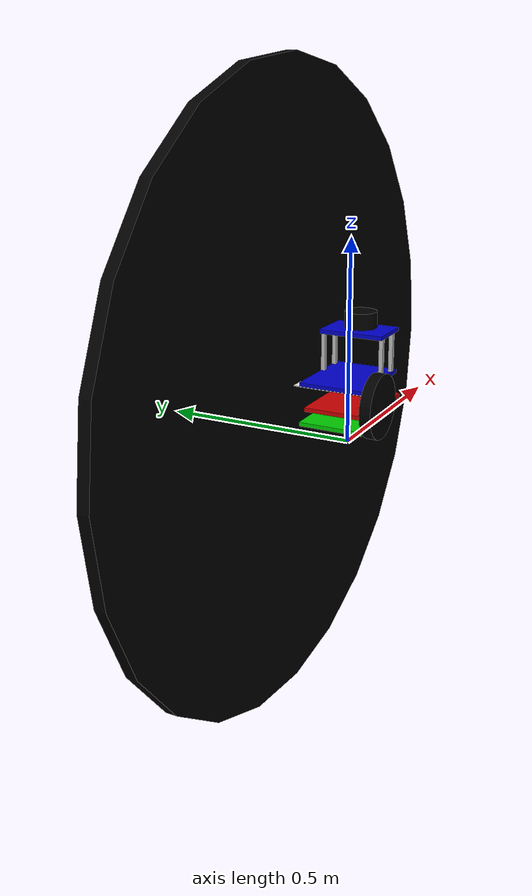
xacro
<?xml version="1.0"?>

<robot name="linorobot" xmlns:xacro="http://www.ros.org/wiki/xacro">

     <link name="base_footprint">
      <visual>
        <geometry>
          <box size="0.21 0.16 0.01"/>
        </geometry>
        <origin rpy="0 0 0" xyz="0.0 0.00 0.065"/>
        <material name="green">
          <color rgba="0 .8 0 1"/>
        </material>
      </visual>
    </link>

    <joint name="base_footprint to base_link" type="fixed">
      <parent link="base_footprint"/>
      <child link="base_link"/>
      <origin xyz="0 0 0.098"/>
    </joint>

     <link name="base_link">
      <visual>
        <geometry>
          <box size="0.21 0.16 0.01"/>
        </geometry>
        <origin rpy="0 0 0" xyz="0.0 0.00 0.065"/>
        <material name="blue">
          <color rgba="0 0 .8 1"/>
        </material>
      </visual>
    </link>

  <link name="imu">
   <visual>
        <geometry>
          <box size="0.21 0.16 0.01"/>
        </geometry>
        <origin rpy="0 0 0" xyz="0.0 0.00 0.065"/>
        <material name="red">
          <color rgba=".8 0 0 1 "/>
        </material>
      </visual>
    </link>

  <joint name="imu_joint" type="fixed">
  <parent link="base_link"/>
  <child link="imu"/>
   <origin xyz="0.027 0 -0.07" rpy="0 0 0"/>
   </joint>

    <link name="perception_deck">
      <visual>
        <geometry>
          <box size="0.11 0.16 0.01"/>
        </geometry>
        <origin rpy="0 0 0" xyz="0.057 0 0.1695"/>
        <material name="blue">
          <color rgba="0 0 .8 1"/>
        </material>
      </visual>
    </link>

  <!-- Camera properties -->
  <joint name="camera_rgb_joint" type="fixed">
    <parent link="perception_deck" />
    <child link="camera_rgb_optical_frame" />
    <origin xyz="0.0 0.0 0.0" rpy="${pi/2} ${pi} ${pi/2}" />
  </joint>
  <link name="camera_rgb_optical_frame">
        <inertial>
            <origin xyz="0.0 0.0 0.0" rpy="0.0 0.0 0.0" />
            <mass value="0.00001"/>
            <inertia
                ixx="1.0" ixy="0.0"  ixz="0.0"
                iyy="1.0" iyz="0.0"
                izz="1.0" />
        </inertial>
    </link>

  <joint name="camera_depth_joint" type="fixed">
    <parent link="perception_deck" />
    <child link="camera_depth_optical_frame" />
    <origin xyz="0.0 0.0 0.0" rpy="${pi/2} ${pi} ${pi/2}" />
  </joint>
  <link name="camera_depth_optical_frame" >
        <inertial>
            <origin xyz="0.0 0.0 0.0" rpy="0.0 0.0 0.0" />
            <mass value="0.00001"/>
            <inertia
                ixx="1.0" ixy="0.0"  ixz="0.0"
                iyy="1.0" iyz="0.0"
                izz="1.0" />
        </inertial>
    </link>

<joint name="camera_depth_frame" type="fixed">
  <parent link="perception_deck" />
  <child link="camera_depth_frame_link" />
  <origin xyz="0.0 0.0 0.0" />
</joint>

<link name="camera_depth_frame_link" >
        <inertial>
            <origin xyz="0.0 0.0 0.0" rpy="0.0 0.0 0.0" />
            <mass value="0.00001"/>
            <inertia
                ixx="1.0" ixy="0.0"  ixz="0.0"
                iyy="1.0" iyz="0.0"
                izz="1.0" />
        </inertial>
    </link>

    <link name="wheel_left">
      <visual>
        <geometry>
          <cylinder length="0.027" radius="0.77"/>
        </geometry>
        <origin rpy="1.57 0 0" xyz="-0.085 0.11 0.0345"/>
        <material name="black">
          <color rgba="0 0 0 1"/>
        </material>
      </visual>
    </link>

    <link name="wheel_right">
      <visual>
        <geometry>
          <cylinder length="0.027" radius="0.077"/>
        </geometry>
        <origin rpy="1.57 0 0" xyz="-0.085 -0.11 0.0345"/>
        <material name="black">
          <color rgba="0 0 0 1"/>
        </material>
      </visual>
    </link>

    <link name="caster_wheel">
      <visual>
        <geometry>
          <cylinder length="0.012" radius="0.025"/>
        </geometry>
        <origin rpy="1.57 0 0" xyz="0.07 0.00 0.025"/>
        <material name="black">
          <color rgba="0 0 0 1"/>
        </material>
      </visual>
    </link>

    <link name="wheel_track">
      <visual>
        <geometry>
          <box size="0.04 0.19 0.002"/>
        </geometry>
        <origin rpy="0 0 0" xyz="-0.085 0.0 0.06"/>
        <material name="white"/>
      </visual>
    </link>

    <link name="laser">
      <visual>
        <geometry>
          <cylinder length="0.04" radius="0.04"/>
        </geometry>
        <material name="black"/>
      </visual>
    </link>

    <link name="left_pole_one">
      <visual>
        <geometry>
          <box size="0.01 0.01 0.095"/>
        </geometry>
        <origin rpy="0 0 0" xyz="0.017 0.075 0.1175"/>
        <material name="silver">
          <color rgba="192 192 192 0.6"/>
        </material>
      </visual>
    </link>

    <link name="left_pole_two">
      <visual>
        <geometry>
          <box size="0.01 0.01 0.095"/>
        </geometry>
        <origin rpy="0 0 0" xyz="0.08 0.075 0.1175"/>
        <material name="silver">
          <color rgba="192 192 192 0.6"/>
        </material>
      </visual>
    </link>

    <link name="right_pole_one">
      <visual>
        <geometry>
          <box size="0.01 0.01 0.095"/>
        </geometry>
        <origin rpy="0 0 0" xyz="0.017 -0.075 0.1175"/>
        <material name="silver">
          <color rgba="192 192 192 0.6"/>
        </material>
      </visual>
    </link>

    <link name="right_pole_two">
      <visual>
        <geometry>
          <box size="0.01 0.01 0.095"/>
        </geometry>
        <origin rpy="0 0 0" xyz="0.08 -0.075 0.1175"/>
        <material name="silver">
          <color rgba="192 192 192 0.6"/>
        </material>
      </visual>
    </link>

    <joint name="base_to_wheel_left" type="fixed">
      <parent link="base_link"/>
      <child link="wheel_left"/>
      <origin xyz="0 0 0"/>
    </joint>

    <joint name="base_to_wheel_right" type="fixed">
      <parent link="base_link"/>
      <child link="wheel_right"/>
      <origin xyz="0 0 0"/>
    </joint>

    <joint name="base_to_wheel_track" type="fixed">
      <parent link="base_link"/>
      <child link="wheel_track"/>
      <origin xyz="0 0 0"/>
    </joint>

    <joint name="base_to_caster_wheel" type="fixed">
      <parent link="base_link"/>
      <child link="caster_wheel"/>
      <origin xyz="0 0 0"/>
    </joint>

    <joint name="base_to_laser" type="fixed">
      <parent link="base_link"/>
      <child link="laser"/>
      <origin xyz="0.065 0.0 0.1960"/>
    </joint>

    <joint name="base_to_left_pole_one" type="fixed">
      <parent link="base_link"/>
      <child link="left_pole_one"/>
      <origin xyz="0 0 0"/>
    </joint>

    <joint name="base_to_left_pole_two" type="fixed">
      <parent link="base_link"/>
      <child link="left_pole_two"/>
      <origin xyz="0 0 0"/>
    </joint>

    <joint name="base_to_right_pole_one" type="fixed">
      <parent link="base_link"/>
      <child link="right_pole_one"/>
      <origin xyz="0 0 0"/>
    </joint>

    <joint name="base_to_right_pole_two" type="fixed">
      <parent link="base_link"/>
      <child link="right_pole_two"/>
      <origin xyz="0 0 0"/>
    </joint>

    <joint name="base_to_perception_deck" type="fixed">
      <parent link="base_link"/>
      <child link="perception_deck"/>
      <origin xyz="0 0 0"/>
    </joint>

</robot>
